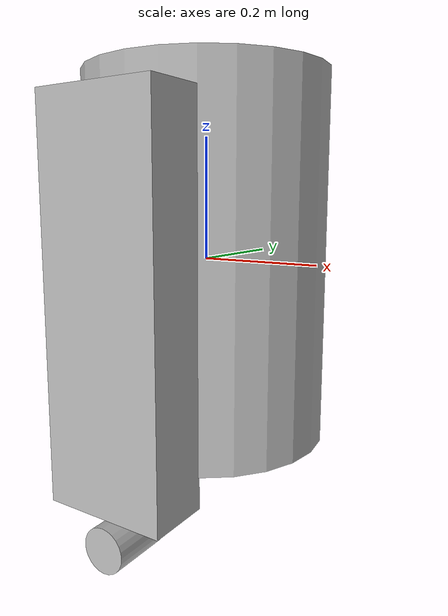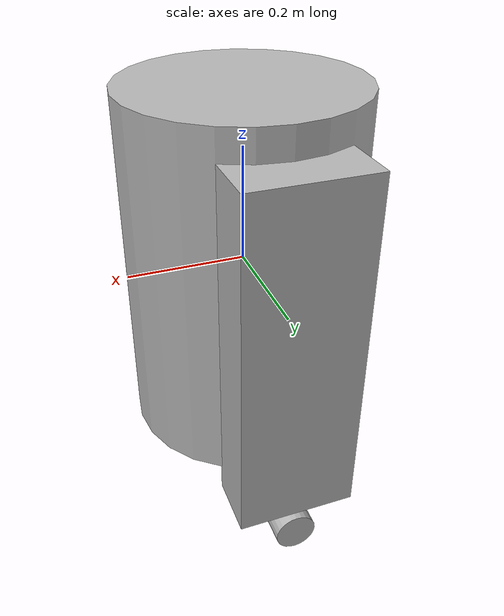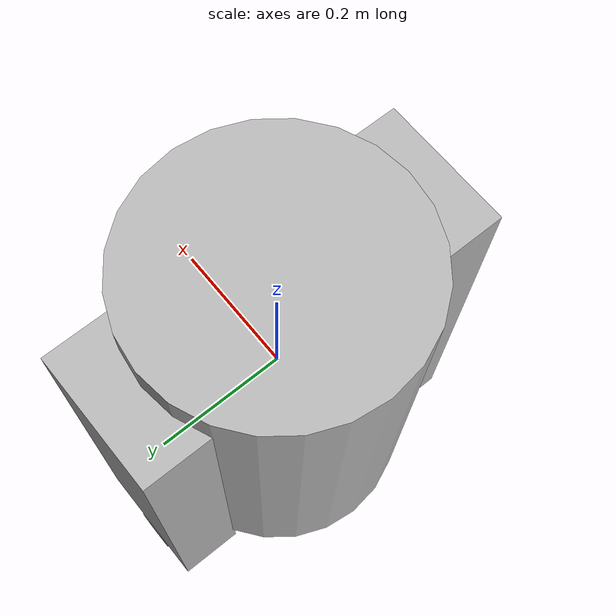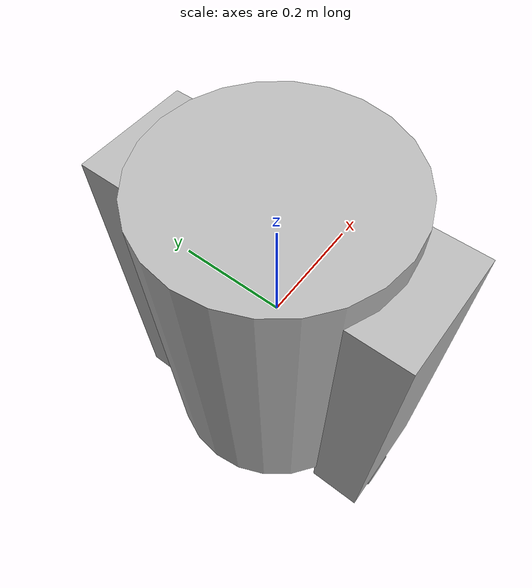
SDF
<sdf version='1.7'>
    <model name='myfirst'>
        <link name='base_link'>
            <inertial>
                <pose>0 0 0.166667 0 -0 0</pose>
                <mass>30</mass>
                <inertia>
                    <ixx>1.38767</ixx>
                    <ixy>0</ixy>
                    <ixz>0</ixz>
                    <iyy>0.419667</iyy>
                    <iyz>0</iyz>
                    <izz>0.971</izz>
                </inertia>
            </inertial>
            <collision name='base_link_collision'>
                <pose>0 0 0 0 -0 0</pose>
                <geometry>
                    <cylinder>
                        <length>0.6</length>
                        <radius>0.2</radius>
                    </cylinder>
                </geometry>
            </collision>
            <collision name='base_link_fixed_joint_lump__left_leg_collision_1'>
                <pose>0 0.22 -0.05 0 1.5708 0</pose>
                <geometry>
                    <box>
                        <size>0.6 0.1 0.2</size>
                    </box>
                </geometry>
            </collision>
            <collision name='base_link_fixed_joint_lump__right_leg_collision_2'>
                <pose>0 -0.22 -0.05 0 1.5708 0</pose>
                <geometry>
                    <box>
                        <size>0.6 0.1 0.2</size>
                    </box>
                </geometry>
            </collision>
            <visual name='base_link_visual'>
                <pose>0 0 0 0 -0 0</pose>
                <geometry>
                    <cylinder>
                        <length>0.6</length>
                        <radius>0.2</radius>
                    </cylinder>
                </geometry>
            </visual>
            <visual name='base_link_fixed_joint_lump__left_leg_visual_1'>
                <pose>0 0.22 -0.05 0 1.5708 0</pose>
                <geometry>
                    <box>
                        <size>0.6 0.1 0.2</size>
                    </box>
                </geometry>
            </visual>
            <visual name='base_link_fixed_joint_lump__right_leg_visual_2'>
                <pose>0 -0.22 -0.05 0 1.5708 0</pose>
                <geometry>
                    <box>
                        <size>0.6 0.1 0.2</size>
                    </box>
                </geometry>
            </visual>
        </link>
        <joint name='left_front_wheel_joint' type='revolute'>
            <pose relative_to='base_link'>0 0.22 -0.4 0 -0 0</pose>
            <parent>base_link</parent>
            <child>left_front_wheel</child>
            <axis>
                <xyz>0 1 0</xyz>
                <limit>
                    <lower>-1e+16</lower>
                    <upper>1e+16</upper>
                </limit>
                <dynamics>
                    <spring_reference>0</spring_reference>
                    <spring_stiffness>0</spring_stiffness>
                </dynamics>
            </axis>
        </joint>
        <link name='left_front_wheel'>
            <pose relative_to='left_front_wheel_joint'>0 0 0 0 -0 0</pose>
            <inertial>
                <pose>0 0 0 0 -0 0</pose>
                <mass>1</mass>
                <inertia>
                    <ixx>0.001</ixx>
                    <ixy>0</ixy>
                    <ixz>0</ixz>
                    <iyy>0.001</iyy>
                    <iyz>0</iyz>
                    <izz>0.001</izz>
                </inertia>
            </inertial>
            <collision name='left_front_wheel_collision'>
                <pose>0 0 0 1.57 -0 0</pose>
                <geometry>
                    <cylinder>
                        <length>0.1</length>
                        <radius>0.035</radius>
                    </cylinder>
                </geometry>
            </collision>
            <visual name='left_front_wheel_visual'>
                <pose>0 0 0 1.57 -0 0</pose>
                <geometry>
                    <cylinder>
                        <length>0.1</length>
                        <radius>0.035</radius>
                    </cylinder>
                </geometry>
            </visual>
        </link>
        <joint name='right_front_wheel_joint' type='revolute'>
            <pose relative_to='base_link'>0 -0.22 -0.4 0 -0 0</pose>
            <parent>base_link</parent>
            <child>right_front_wheel</child>
            <axis>
                <xyz>0 1 0</xyz>
                <limit>
                    <lower>-1e+16</lower>
                    <upper>1e+16</upper>
                </limit>
                <dynamics>
                    <spring_reference>0</spring_reference>
                    <spring_stiffness>0</spring_stiffness>
                </dynamics>
            </axis>
        </joint>
        <link name='right_front_wheel'>
            <pose relative_to='right_front_wheel_joint'>0 0 0 0 -0 0</pose>
            <inertial>
                <pose>0 0 0 0 -0 0</pose>
                <mass>1</mass>
                <inertia>
                    <ixx>0.001</ixx>
                    <ixy>0</ixy>
                    <ixz>0</ixz>
                    <iyy>0.001</iyy>
                    <iyz>0</iyz>
                    <izz>0.001</izz>
                </inertia>
            </inertial>
            <collision name='right_front_wheel_collision'>
                <pose>0 0 0 1.57 -0 0</pose>
                <geometry>
                    <cylinder>
                        <length>0.1</length>
                        <radius>0.035</radius>
                    </cylinder>
                </geometry>
            </collision>
            <visual name='right_front_wheel_visual'>
                <pose>0 0 0 1.57 -0 0</pose>
                <geometry>
                    <cylinder>
                        <length>0.1</length>
                        <radius>0.035</radius>
                    </cylinder>
                </geometry>
            </visual>
        </link>
    </model>
</sdf>
